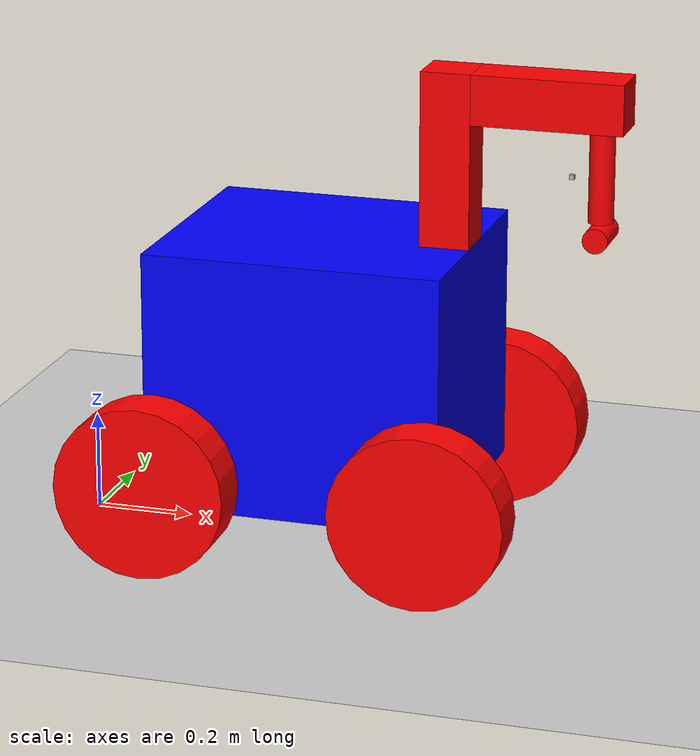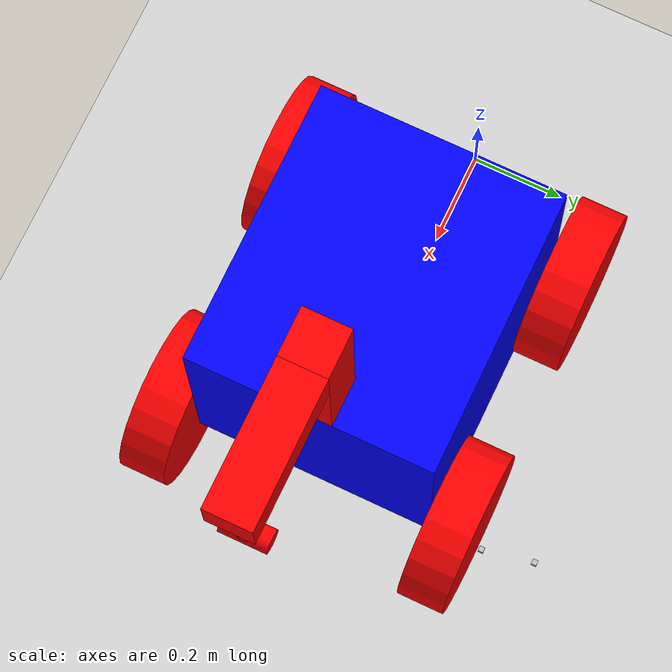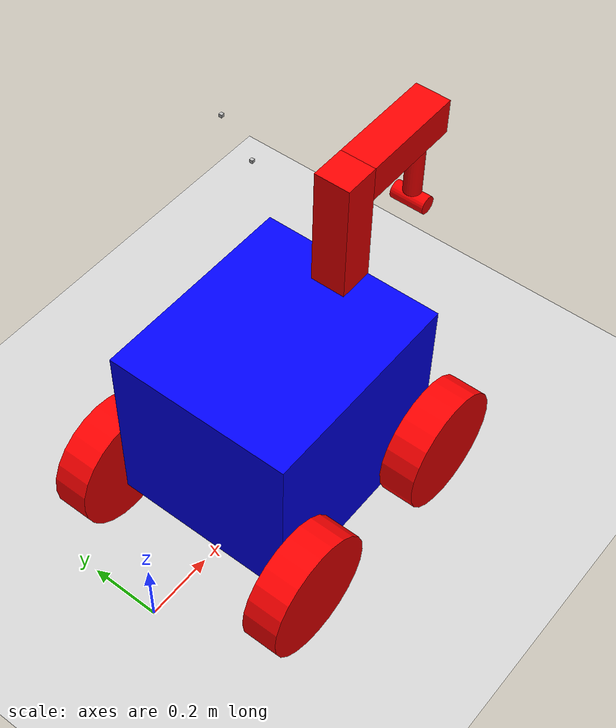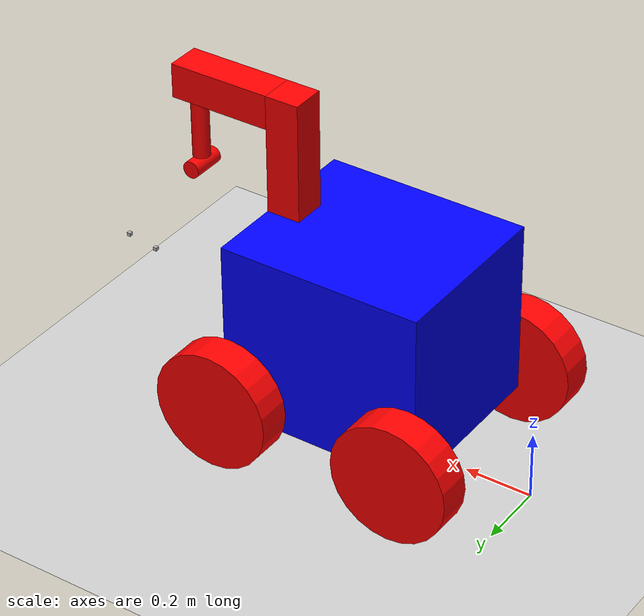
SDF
<?xml version="1.0" ?>
<sdf version="1.10">
    <world name="car_world">
        <physics name="1ms" type="ignored">
            <max_step_size>0.001</max_step_size>
            <real_time_factor>1.0</real_time_factor>
        </physics>
        <plugin
            filename="gz-sim-physics-system"
            name="gz::sim::systems::Physics">
        </plugin>
        <plugin
            filename="gz-sim-user-commands-system"
            name="gz::sim::systems::UserCommands">
        </plugin>
        <plugin
            filename="gz-sim-scene-broadcaster-system"
            name="gz::sim::systems::SceneBroadcaster">
        </plugin>

	<plugin
            filename="libignition-gazebo-sensors-system.so"
            name="ignition::gazebo::systems::Sensors">
        </plugin>

        <light type="directional" name="sun">
            <cast_shadows>true</cast_shadows>
            <pose>0 0 10 0 0 0</pose>
            <diffuse>0.8 0.8 0.8 1</diffuse>
            <specular>0.2 0.2 0.2 1</specular>
            <attenuation>
                <range>1000</range>
                <constant>0.9</constant>
                <linear>0.01</linear>
                <quadratic>0.001</quadratic>
            </attenuation>
            <direction>-0.5 0.1 -0.9</direction>
        </light>

        <model name="ground_plane">
            <static>true</static>
            <link name="link">
                <collision name="collision">
                <geometry>
                    <plane>
                    <normal>0 0 1</normal>
                    </plane>
                </geometry>
                </collision>
                <visual name="visual">
                <geometry>
                    <plane>
                    <normal>0 0 1</normal>
                    <size>100 100</size>
                    </plane>
                </geometry>
                <material>
                    <ambient>0.8 0.8 0.8 1</ambient>
                    <diffuse>0.8 0.8 0.8 1</diffuse>
                    <specular>0.8 0.8 0.8 1</specular>
                </material>
                </visual>
            </link>
        </model>

        <model name='vehicle_blue' canonical_link='chassis'>
            <plugin
                filename="libignition-gazebo-diff-drive-system.so"
                name="ignition::gazebo::systems::DiffDrive">
                <left_joint>left_wheel_joint</left_joint>
                <right_joint>right_wheel_joint</right_joint>
                <wheel_separation>1.2</wheel_separation>
                <wheel_radius>0.4</wheel_radius>
                <odom_publish_frequency>1</odom_publish_frequency>
                <topic>cmd_vel</topic>
            </plugin>
            <pose relative_to='world'>0 0 0 0 0 0</pose>
            <link name='chassis'>
                <pose relative_to='__model__'>0.5 0 0.375 0 0 0</pose>
                <inertial> <!--inertial properties of the link mass, inertia matix-->
                    <mass>4</mass>
                    <inertia>
                        <ixx>0.12</ixx>
                        <ixy>0</ixy>
                        <ixz>0</ixz>
                        <iyy>0.090133</iyy>
                        <iyz>0</iyz>
                        <izz>0.210133</izz>
                    </inertia>
                </inertial>
                <visual name='visual'>
                    <geometry>
                        <box>
                            <size>0.6 0.52 0.52</size>
                        </box>
                    </geometry>
                    <material>
                        <ambient>0.0 0.0 1.0 1</ambient>
                        <diffuse>0.0 0.0 1.0 1</diffuse>
                        <specular>0.0 0.0 1.0 1</specular>
                    </material>
                </visual>
                <collision name='collision'>
                    <geometry>
                        <box>
                            <size>0.6 0.52 0.52</size>
                        </box>
                    </geometry>
                </collision>
            </link>
            <link name='gripper'>
                <pose relative_to='chassis'> 0.25 0 0.26 0 0 0</pose>
            </link>
            <link name='body_a'>
                <pose relative_to='gripper'>0 0 0.175 -1.5707 0 0</pose>
                <inertial>
                    <mass>2</mass>
                    <inertia>
                        <ixx>0.001667</ixx>
                        <ixy>0</ixy>
                        <ixz>0</ixz>
                        <iyy>0.020417</iyy>
                        <iyz>0</iyz>
                        <izz>0.022083</izz>
                    </inertia>
                </inertial>
                <visual name='visual'>
                    <geometry>
                        <box>
                            <size>0.1 0.35 0.1</size>
                        </box>
                    </geometry>
                    <material>
                        <ambient>1.0 0.0 0.0 1</ambient>
                        <diffuse>1.0 0.0 0.0 1</diffuse>
                        <specular>1.0 0.0 0.0 1</specular>
                    </material>
                </visual>
                <collision name='collision'>
                    <geometry>
                        <box>
                            <size>0.1 0.35 0.1</size>
                        </box>
                    </geometry>
                </collision>
            </link>
            <link name='body_b'>
                <pose relative_to='gripper'>0.20 0 0.3 -1.5707 0 0</pose>
                <inertial>
                    <mass>2</mass>
                    <inertia>
                        <ixx>0.001667</ixx>
                        <ixy>0</ixy>
                        <ixz>0</ixz>
                        <iyy>0.020417</iyy>
                        <iyz>0</iyz>
                        <izz>0.022083</izz>
                    </inertia>
                </inertial>
                <visual name='visual'>
                    <geometry>
                        <box>
                            <size>0.3 0.1 0.1</size>
                        </box>
                    </geometry>
                    <material>
                        <ambient>1.0 0.0 0.0 1</ambient>
                        <diffuse>1.0 0.0 0.0 1</diffuse>
                        <specular>1.0 0.0 0.0 1</specular>
                    </material>
                </visual>
                <collision name='collision'>
                    <geometry>
                        <box>
                            <size>0.3 0.1 0.1</size>
                        </box>
                    </geometry>
                </collision>
            </link>
            <link name='body_c'>
                <pose relative_to='gripper'>0.30 0 0.1575 0 0 0</pose>
                <inertial>
                    <mass>2</mass>
                    <inertia>
                        <ixx>0.001667</ixx>
                        <ixy>0</ixy>
                        <ixz>0</ixz>
                        <iyy>0.020417</iyy>
                        <iyz>0</iyz>
                        <izz>0.022083</izz>
                    </inertia>
                </inertial>
                <visual name='visual'>
                    <geometry>
                        <cylinder>
                            <radius>0.025</radius>
                            <length>0.185</length>
                        </cylinder>
                    </geometry>
                    <material>
                        <ambient>1.0 0.0 0.0 1</ambient>
                        <diffuse>1.0 0.0 0.0 1</diffuse>
                        <specular>1.0 0.0 0.0 1</specular>
                    </material>
                </visual>
                <collision name='collision'>
                    <geometry>
                        <cylinder>
                            <radius>0.025</radius>
                            <length>0.185</length>
                        </cylinder>
                    </geometry>
                </collision>
            </link>
            <link name='body_d'>
                <pose relative_to='gripper'>0.30 0 0.04 -1.5707 0 0</pose>
                <inertial>
                    <mass>2</mass>
                    <inertia>
                        <ixx>0.001667</ixx>
                        <ixy>0</ixy>
                        <ixz>0</ixz>
                        <iyy>0.020417</iyy>
                        <iyz>0</iyz>
                        <izz>0.022083</izz>
                    </inertia>
                </inertial>
                <visual name='visual'>
                    <geometry>
                        <cylinder>
                            <radius>0.025</radius>
                            <length>0.1</length>
                        </cylinder>
                    </geometry>
                    <material>
                        <ambient>1.0 0.0 0.0 1</ambient>
                        <diffuse>1.0 0.0 0.0 1</diffuse>
                        <specular>1.0 0.0 0.0 1</specular>
                    </material>
                </visual>
                <collision name='collision'>
                    <geometry>
                        <cylinder>
                            <radius>0.025</radius>
                            <length>0.1</length>
                        </cylinder>
                    </geometry>
                </collision>
            </link>
            <link name='body_e'>
                <pose relative_to='gripper'>0.30 0 0.1575 0 0 0</pose>
                <inertial>
                    <mass>2</mass>
                    <inertia>
                        <ixx>0.001667</ixx>
                        <ixy>0</ixy>
                        <ixz>0</ixz>
                        <iyy>0.020417</iyy>
                        <iyz>0</iyz>
                        <izz>0.022083</izz>
                    </inertia>
                </inertial>
                <visual name='visual'>
                    <geometry>
                        <cylinder>
                            <radius>0.0125</radius>
                            <length>0.1</length>
                        </cylinder>
                    </geometry>
                    <material>
                        <ambient>1.0 0.0 0.0 1</ambient>
                        <diffuse>1.0 0.0 0.0 1</diffuse>
                        <specular>1.0 0.0 0.0 1</specular>
                    </material>
                </visual>
                <collision name='collision'>
                    <geometry>
                        <cylinder>
                            <radius>0.025</radius>
                            <length>0.1</length>
                        </cylinder>
                    </geometry>
                </collision>
            </link>
            <link name='left_wheel_back'>
                <pose relative_to="chassis">-0.28 0.31 -0.20 -1.5707 0 0</pose>
                <inertial>
                    <mass>1</mass>
                    <inertia>
                        <ixx>0.00849</ixx>
                        <ixy>0</ixy>
                        <ixz>0</ixz>
                        <iyy>0.00849</iyy>
                        <iyz>0</iyz>
                        <izz>0.015312</izz>
                    </inertia>
                </inertial>
                <visual name='visual'>
                    <geometry>
                        <cylinder>
                            <radius>0.175</radius>
                            <length>0.1</length>
                        </cylinder>
                    </geometry>
                    <material>
                        <ambient>1.0 0.0 0.0 1</ambient>
                        <diffuse>1.0 0.0 0.0 1</diffuse>
                        <specular>1.0 0.0 0.0 1</specular>
                    </material>
                </visual>
                <collision name='collision'>
                    <geometry>
                        <cylinder>
                            <radius>0.4</radius>
                            <length>0.2</length>
                        </cylinder>
                    </geometry>
                </collision>
            </link>
            <link name='left_wheel_front'>
                <pose relative_to="chassis">0.28 0.31 -0.20 -1.5707 0 0</pose>
                <inertial>
                    <mass>1</mass>
                    <inertia>
                        <ixx>0.00849</ixx>
                        <ixy>0</ixy>
                        <ixz>0</ixz>
                        <iyy>0.00849</iyy>
                        <iyz>0</iyz>
                        <izz>0.015312</izz>
                    </inertia>
                </inertial>
                <visual name='visual'>
                    <geometry>
                        <cylinder>
                            <radius>0.175</radius>
                            <length>0.1</length>
                        </cylinder>
                    </geometry>
                    <material>
                        <ambient>1.0 0.0 0.0 1</ambient>
                        <diffuse>1.0 0.0 0.0 1</diffuse>
                        <specular>1.0 0.0 0.0 1</specular>
                    </material>
                </visual>
                <collision name='collision'>
                    <geometry>
                        <cylinder>
                            <radius>0.4</radius>
                            <length>0.2</length>
                        </cylinder>
                    </geometry>
                </collision>
            </link>
            <link name='right_wheel_front'>
                <pose relative_to="chassis">0.28 -0.31 -0.20 -1.5707 0 0</pose>
                <inertial>
                    <mass>1</mass>
                    <inertia>
                        <ixx>0.00849</ixx>
                        <ixy>0</ixy>
                        <ixz>0</ixz>
                        <iyy>0.00849</iyy>
                        <iyz>0</iyz>
                        <izz>0.015312</izz>
                    </inertia>
                </inertial>
                <visual name='visual'>
                    <geometry>
                        <cylinder>
                            <radius>0.175</radius>
                            <length>0.1</length>
                        </cylinder>
                    </geometry>
                    <material>
                        <ambient>1.0 0.0 0.0 1</ambient>
                        <diffuse>1.0 0.0 0.0 1</diffuse>
                        <specular>1.0 0.0 0.0 1</specular>
                    </material>
                </visual>
                <collision name='collision'>
                    <geometry>
                        <cylinder>
                            <radius>0.4</radius>
                            <length>0.2</length>
                        </cylinder>
                    </geometry>
                </collision>
            </link>
            <link name='right_wheel_back'>
                <pose relative_to="chassis">-0.28 -0.31 -0.20 -1.5707 0 0</pose>
                <inertial>
                    <mass>1</mass>
                    <inertia>
                        <ixx>0.00849</ixx>
                        <ixy>0</ixy>
                        <ixz>0</ixz>
                        <iyy>0.00849</iyy>
                        <iyz>0</iyz>
                        <izz>0.015312</izz>
                    </inertia>
                </inertial>
                <visual name='visual'>
                    <geometry>
                        <cylinder>
                            <radius>0.175</radius>
                            <length>0.1</length>
                        </cylinder>
                    </geometry>
                    <material>
                        <ambient>1.0 0.0 0.0 1</ambient>
                        <diffuse>1.0 0.0 0.0 1</diffuse>
                        <specular>1.0 0.0 0.0 1</specular>
                    </material>
                </visual>
                <collision name='collision'>
                    <geometry>
                        <cylinder>
                            <radius>0.4</radius>
                            <length>0.2</length>
                        </cylinder>
                    </geometry>
                </collision>
            </link>
            <joint name='right_wheel_front_joint' type='revolute'>
                <pose relative_to='right_wheel_front'/>
                <parent>chassis</parent>
                <child>right_wheel_front</child>
                <axis>
                    <xyz expressed_in='__model__'>0 1 0</xyz>
                    <limit>
                        <lower>-1.79769e+308</lower>    <!--negative infinity-->
                        <upper>1.79769e+308</upper>     <!--positive infinity-->
                    </limit>
                </axis>
            </joint>
            <joint name='right_wheel_back_joint' type='revolute'>
                <pose relative_to='right_wheel_back'/>
                <parent>chassis</parent>
                <child>right_wheel_back</child>
                <axis>
                    <xyz expressed_in='__model__'>0 1 0</xyz>
                    <limit>
                        <lower>-1.79769e+308</lower>    <!--negative infinity-->
                        <upper>1.79769e+308</upper>     <!--positive infinity-->
                    </limit>
                </axis>
            </joint>
            <joint name='left_wheel_front_joint' type='revolute'>
                <pose relative_to='left_wheel_front'/>
                <parent>chassis</parent>
                <child>left_wheel_front</child>
                <axis>
                    <xyz expressed_in='__model__'>0 1 0</xyz>
                    <limit>
                        <lower>-1.79769e+308</lower>    <!--negative infinity-->
                        <upper>1.79769e+308</upper>     <!--positive infinity-->
                    </limit>
                </axis>
            </joint>
            <joint name='left_wheel_back_joint' type='revolute'>
                <pose relative_to='left_wheel_back'/>
                <parent>chassis</parent>
                <child>left_wheel_back</child>
                <axis>
                    <xyz expressed_in='__model__'>0 1 0</xyz>
                    <limit>
                        <lower>-1.79769e+308</lower>    <!--negative infinity-->
                        <upper>1.79769e+308</upper>     <!--positive infinity-->
                    </limit>
                </axis>
            </joint>
            <joint name='base_rotation' type='revolute'>
                <pose relative_to='body_a'/>
                <parent>chassis</parent>
                <child>body_a</child>
                <axis>
                    <xyz expressed_in='__model__'>0 0 1</xyz>
                    <limit>
                        <lower>-1.79769e+308</lower>    <!--negative infinity-->
                        <upper>1.79769e+308</upper>     <!--positive infinity-->
                    </limit>
                </axis>
            </joint>
            <joint name='body_b_fixed' type='revolute'>
                <pose relative_to='body_b'/>
                <parent>body_a</parent>
                <child>body_b</child>
                <axis>
                    <xyz expressed_in='body_a'>0 0 1</xyz>
                    <limit>
                        <lower>0</lower>    <!--negative infinity-->
                        <upper>0</upper>     <!--positive infinity-->
                    </limit>
                </axis>
                <axis>
                    <xyz expressed_in='body_a'>0 1 0</xyz>
                    <limit>
                        <lower>0</lower>    <!--negative infinity-->
                        <upper>0</upper>     <!--positive infinity-->
                    </limit>
                </axis>
                <axis>
                    <xyz expressed_in='body_a'>1 0 0</xyz>
                    <limit>
                        <lower>0</lower>    <!--negative infinity-->
                        <upper>0</upper>     <!--positive infinity-->
                    </limit>
                </axis>
            </joint>
            <joint name='body_c_joint_fixed' type='revolute'>
                <pose relative_to='body_c'/>
                <parent>body_b</parent>
                <child>body_c</child>
                <axis>
                    <xyz expressed_in='body_b'>0 0 1</xyz>
                    <limit>
                        <lower>0</lower>    <!--negative infinity-->
                        <upper>0</upper>     <!--positive infinity-->
                    </limit>
                </axis>
                <axis>
                    <xyz expressed_in='body_b'>0 1 0</xyz>
                    <limit>
                        <lower>0</lower>    <!--negative infinity-->
                        <upper>0</upper>     <!--positive infinity-->
                    </limit>
                </axis>
                <axis>
                    <xyz expressed_in='body_b'>1 0 0</xyz>
                    <limit>
                        <lower>0</lower>    <!--negative infinity-->
                        <upper>0</upper>     <!--positive infinity-->
                    </limit>
                </axis>
            </joint>
            <joint name='gripper_end' type='revolute'>
                <pose relative_to='body_e'/>
                <parent>body_e</parent>
                <child>body_d</child>
                <axis>
                    <xyz expressed_in='body_e'>0 0 1</xyz>
                    <limit>
                        <lower>-1.79769e+308</lower>    <!--negative infinity-->
                        <upper>1.79769e+308</upper>     <!--positive infinity-->
                    </limit>
                </axis>
            </joint>
            <joint name='telescopic_arm' type='prismatic'>
                <pose relative_to='body_e'/>
                <parent>body_c</parent>
                <child>body_e</child>
                <axis>
                    <xyz expressed_in='body_c'>0 0 1</xyz>
                    <limit>
                        <lower>-0.185</lower>    <!--negative infinity-->
                        <upper>0</upper>     <!--positive infinity-->
                    </limit>
                </axis>
            </joint>

           <link name='front_depth_camera'>
                <pose relative_to="chassis">0.40 0.5 0.4 0 0 0</pose>
                <inertial>
                    <mass>1e-10</mass>
                </inertial>
                <visual name='front_depth_camera_visual'>
                     <geometry>
                          <box>
                               <size>0.01 0.01 0.01</size>
                          </box>
                    </geometry>
                </visual>
                <sensor type="depth_camera" name="front_depth_camera">
                    <always_on>1</always_on>
                    <visualize>true</visualize>
                    <update_rate>10</update_rate>
                    <topic>/world/auv/model/auv/link/front_depth_camera/sensor/front_depth_camera/depth_image</topic>
                    <camera>
                        <horizontal_fov>2.00</horizontal_fov>
                        <image>
                            <width>320</width>
                            <height>240</height>
                            <format>R_FLOAT32</format>
                        </image>
                        <clip>
                             <near>0.1</near>
                             <far>10.0</far>
                        </clip>
                    </camera>
                </sensor>
                <sensor name="gpu_lidar_sensor" type="gpu_lidar">
        <pose>0 0 1.5 0 0 0</pose> <!-- Adjust pose as necessary -->
        <ray>
          <scan>
            <horizontal>
              <samples>640</samples>
              <resolution>1</resolution>
              <min_angle>-2.26889</min_angle>
              <max_angle>2.26889</max_angle>
            </horizontal>
            <vertical>
              <samples>1</samples>
              <resolution>1</resolution>
              <min_angle>0</min_angle>
              <max_angle>0</max_angle>
            </vertical>
          </scan>
          <range>
            <min>0.1</min>
            <max>30.0</max>
            <resolution>0.01</resolution>
          </range>
          <noise>
            <type>gaussian</type>
            <mean>0.0</mean>
            <stddev>0.01</stddev>
          </noise>
        </ray>
        <plugin name="gpu_lidar_controller" filename="libignition-gazebo-sensors-system.so">
          <topic>/lidar/points</topic>
        </plugin>
      </sensor>
             </link>
             <link name='front_camera'>
                <pose relative_to="chassis">0.40 0.40 0.3 0 0 0</pose>
                <inertial>
                    <mass>1e-10</mass>
                </inertial>
                <visual name='front_camera_visual'>
                     <geometry>
                         <box>
                            <size>0.01 0.01 0.01</size>
                         </box>
                    </geometry>
                </visual>
                <sensor type="camera" name="front_camera">
                    <always_on>1</always_on>
                    <visualize>true</visualize>
                    <update_rate>10</update_rate>
                    <topic>/world/auv/model/auv/link/front_camera/sensor/front_camera/image</topic>
                    <camera>
                        <horizontal_fov>2.00</horizontal_fov>
                        <image>
                            <width>320</width>
                            <height>240</height>
                        </image>
                        <clip>
                            <near>0.1</near>
                            <far>10.0</far>
                         </clip>
                    </camera>
                </sensor>
            </link>
        </model>
        <plugin filename='libignition-gazebo-triggered-publisher-system.so'
        name="ignition::gazebo::systems::TriggeredPublisher">
    <input type ="ignition.msgs.StringMsg" topic="/movement_command">
        <!-- Assuming your script publishes movement commands as strings -->
    </input>
    <output type="ignition.msgs.Twist" topic="/cmd_vel">
        <!-- Forward motion -->
        <match>
            <message>forward</message>
            <output linear="{x: 0.5}, angular: {z: 0.0}" />
        </match>
        <!-- Backward motion -->
        <match>
            <message>backward</message>
            <output linear="{x: -0.5}, angular: {z: 0.0}" />
        </match>
        <!-- Left turn -->
        <match>
            <message>left</message>
            <output linear="{x: 0.0}, angular: {z: 0.5}" />
        </match>
        <!-- Right turn -->
        <match>
            <message>right</message>
            <output linear="{x: 0.0}, angular: {z: -0.5}" />
        </match>
        <!-- Stop -->
        <match>
            <message>stop</message>
            <output linear="{x: 0.0}, angular: {z: 0.0}" />
        </match>
    </output>
</plugin>

    </world>
</sdf>
